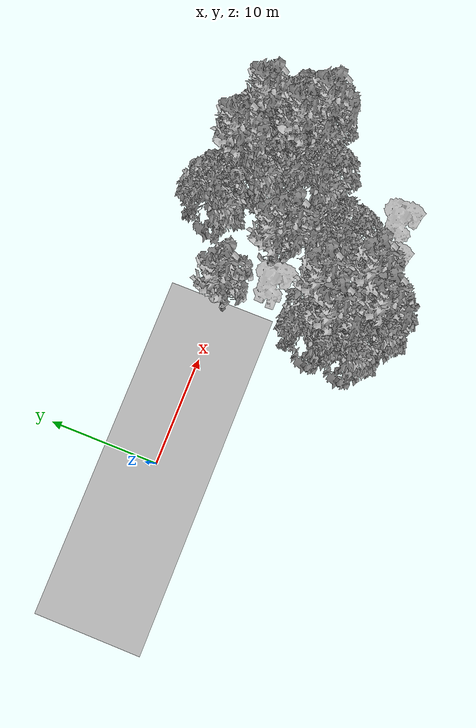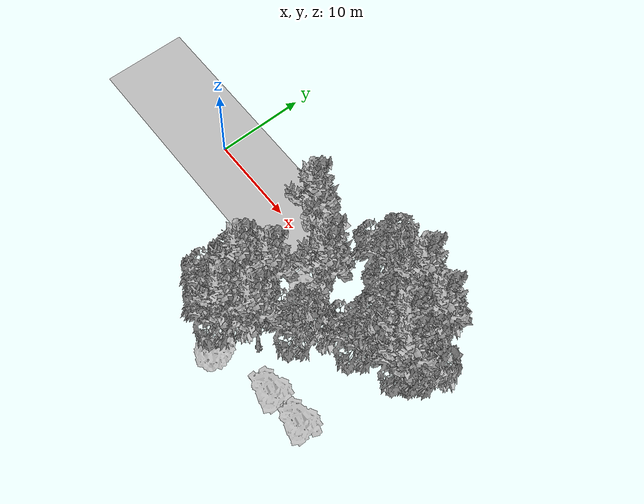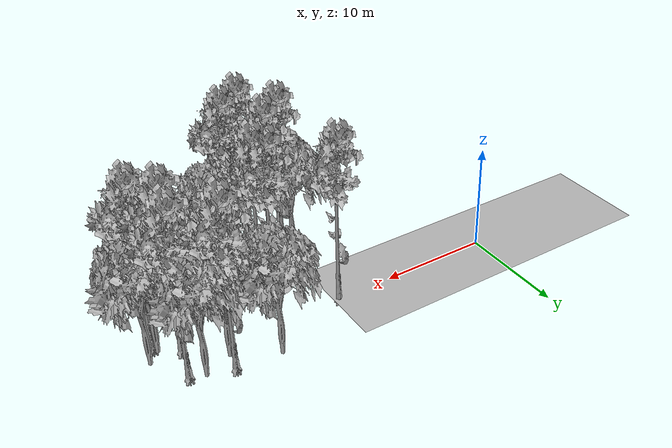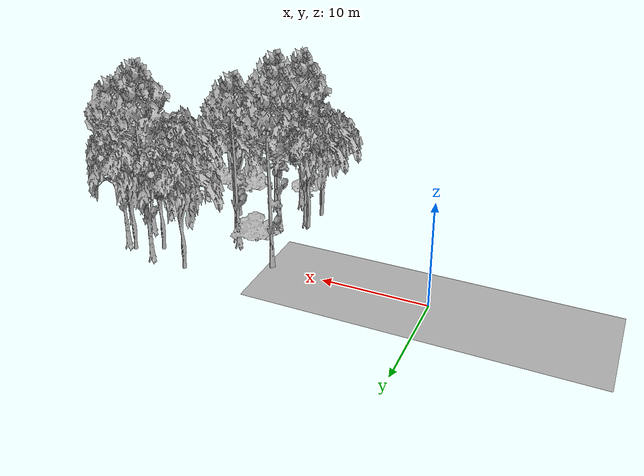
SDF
<sdf version="1.7">
 <world name="default">
  <model name="ground_plane">
   <static>1</static>
   <link name="link">
    <collision name="collision">
     <pose>-50 0 0 0 -0 0</pose>
     <geometry><plane><normal>0 0 1</normal><size>100 100</size></plane></geometry>
     <surface><contact><ode><min_depth>0.01</min_depth><max_vel>0</max_vel></ode></contact></surface>
    </collision>
    <visual name="grass">
     <cast_shadows>0</cast_shadows>
     <geometry>
      <mesh>
       <scale>0.5814285714285714 0.18142857142857144 0.1</scale>
       <uri>file://grass_plane/meshes/grass_plane.dae</uri>
      </mesh>
     </geometry>
    </visual>
   </link>
  </model>
  <model name="Tree 9">
   <static>1</static>
   <pose>26.08876032020335 1.0715336775845756 0 1.57079 -0 0</pose>
   <link name="link">
    <collision name="collision">
     <geometry><mesh><scale>3.5 5 3.5</scale><uri>model://tree_2/meshes/tree_2.obj</uri></mesh></geometry>
    </collision>
    <visual name="visual">
     <geometry><mesh><scale>3.5 5 3.5</scale><uri>model://tree_2/meshes/tree_2.obj</uri></mesh></geometry>
    </visual>
   </link>
  </model>
  <model name="Tree 22">
   <static>1</static>
   <pose>17.99346908390767 -7.283222774635866 0 1.57079 -0 0</pose>
   <link name="link">
    <collision name="collision">
     <geometry><mesh><scale>3.5 5 3.5</scale><uri>model://tree_9/meshes/tree_9.obj</uri></mesh></geometry>
    </collision>
    <visual name="visual">
     <geometry><mesh><scale>3.5 5 3.5</scale><uri>model://tree_9/meshes/tree_9.obj</uri></mesh></geometry>
    </visual>
   </link>
  </model>
  <model name="Tree 34">
   <static>1</static>
   <pose>22.427675313671912 3.15626842298742 0 1.57079 -0 0</pose>
   <link name="link">
    <collision name="collision">
     <geometry><mesh><scale>3.5 5 3.5</scale><uri>model://tree_2/meshes/tree_2.obj</uri></mesh></geometry>
    </collision>
    <visual name="visual">
     <geometry><mesh><scale>3.5 5 3.5</scale><uri>model://tree_2/meshes/tree_2.obj</uri></mesh></geometry>
    </visual>
   </link>
  </model>
  <model name="Tree 50">
   <static>1</static>
   <pose>18.035217594214686 -14.524705740083226 0 1.57079 -0 0</pose>
   <link name="link">
    <collision name="collision">
     <geometry><mesh><scale>4 2.5 4</scale><uri>model://tree_1/meshes/tree_1.obj</uri></mesh></geometry>
    </collision>
    <visual name="visual">
     <geometry><mesh><scale>4 2.5 4</scale><uri>model://tree_1/meshes/tree_1.obj</uri></mesh></geometry>
    </visual>
   </link>
  </model>
  <model name="Tree 52">
   <static>1</static>
   <pose>28.576887407296866 2.1512920128387165 0 1.57079 -0 0</pose>
   <link name="link">
    <collision name="collision">
     <geometry><mesh><scale>3.5 5 3.5</scale><uri>model://tree_2/meshes/tree_2.obj</uri></mesh></geometry>
    </collision>
    <visual name="visual">
     <geometry><mesh><scale>3.5 5 3.5</scale><uri>model://tree_2/meshes/tree_2.obj</uri></mesh></geometry>
    </visual>
   </link>
  </model>
  <model name="Tree 59">
   <static>1</static>
   <pose>26.81798654999365 -4.26074643640186 0 1.57079 -0 0</pose>
   <link name="link">
    <collision name="collision">
     <geometry><mesh><scale>3.5 5 3.5</scale><uri>model://tree_2/meshes/tree_2.obj</uri></mesh></geometry>
    </collision>
    <visual name="visual">
     <geometry><mesh><scale>3.5 5 3.5</scale><uri>model://tree_2/meshes/tree_2.obj</uri></mesh></geometry>
    </visual>
   </link>
  </model>
  <model name="Tree 90">
   <static>1</static>
   <pose>29.916397405309368 1.601530522889174 0 1.57079 -0 0</pose>
   <link name="link">
    <collision name="collision">
     <geometry><mesh><scale>3.5 5 3.5</scale><uri>model://tree_9/meshes/tree_9.obj</uri></mesh></geometry>
    </collision>
    <visual name="visual">
     <geometry><mesh><scale>3.5 5 3.5</scale><uri>model://tree_9/meshes/tree_9.obj</uri></mesh></geometry>
    </visual>
   </link>
  </model>
  <model name="Tree 101">
   <static>1</static>
   <pose>20.09967666607716 -2.721334110853034 0 1.57079 -0 0</pose>
   <link name="link">
    <collision name="collision">
     <geometry><mesh><scale>3.5 5 3.5</scale><uri>model://tree_9/meshes/tree_9.obj</uri></mesh></geometry>
    </collision>
    <visual name="visual">
     <geometry><mesh><scale>3.5 5 3.5</scale><uri>model://tree_9/meshes/tree_9.obj</uri></mesh></geometry>
    </visual>
   </link>
  </model>
  <model name="Tree 107">
   <static>1</static>
   <pose>31.764914899679383 -1.5267585763329965 0 1.57079 -0 0</pose>
   <link name="link">
    <collision name="collision">
     <geometry><mesh><scale>3.5 5 3.5</scale><uri>model://tree_2/meshes/tree_2.obj</uri></mesh></geometry>
    </collision>
    <visual name="visual">
     <geometry><mesh><scale>3.5 5 3.5</scale><uri>model://tree_2/meshes/tree_2.obj</uri></mesh></geometry>
    </visual>
   </link>
  </model>
  <model name="Tree 118">
   <static>1</static>
   <pose>15.155613044377723 -8.256537340311393 0 1.57079 -0 0</pose>
   <link name="link">
    <collision name="collision">
     <geometry><mesh><scale>3.5 5 3.5</scale><uri>model://tree_2/meshes/tree_2.obj</uri></mesh></geometry>
    </collision>
    <visual name="visual">
     <geometry><mesh><scale>3.5 5 3.5</scale><uri>model://tree_2/meshes/tree_2.obj</uri></mesh></geometry>
    </visual>
   </link>
  </model>
  <model name="Tree 121">
   <static>1</static>
   <pose>14.951676082252732 -11.111767576242885 0 1.57079 -0 0</pose>
   <link name="link">
    <collision name="collision">
     <geometry><mesh><scale>3.5 5 3.5</scale><uri>model://tree_2/meshes/tree_2.obj</uri></mesh></geometry>
    </collision>
    <visual name="visual">
     <geometry><mesh><scale>3.5 5 3.5</scale><uri>model://tree_2/meshes/tree_2.obj</uri></mesh></geometry>
    </visual>
   </link>
  </model>
  <model name="Tree 145">
   <static>1</static>
   <pose>18.8223890766224 -3.907667524296281 0 1.57079 -0 0</pose>
   <link name="link">
    <collision name="collision">
     <geometry><mesh><scale>3 2 3</scale><uri>model://tree_3/meshes/tree_3.obj</uri></mesh></geometry>
    </collision>
    <visual name="visual">
     <geometry><mesh><scale>3 2 3</scale><uri>model://tree_3/meshes/tree_3.obj</uri></mesh></geometry>
    </visual>
   </link>
  </model>
  <model name="Tree 160">
   <static>1</static>
   <pose>20.80851007629407 -3.6224122424047067 0 1.57079 -0 0</pose>
   <link name="link">
    <collision name="collision">
     <geometry><mesh><scale>3.5 5 3.5</scale><uri>model://tree_9/meshes/tree_9.obj</uri></mesh></geometry>
    </collision>
    <visual name="visual">
     <geometry><mesh><scale>3.5 5 3.5</scale><uri>model://tree_9/meshes/tree_9.obj</uri></mesh></geometry>
    </visual>
   </link>
  </model>
  <model name="Tree 168">
   <static>1</static>
   <pose>30.746796895250057 -2.5452059636831272 0 1.57079 -0 0</pose>
   <link name="link">
    <collision name="collision">
     <geometry><mesh><scale>3.5 5 3.5</scale><uri>model://tree_2/meshes/tree_2.obj</uri></mesh></geometry>
    </collision>
    <visual name="visual">
     <geometry><mesh><scale>3.5 5 3.5</scale><uri>model://tree_2/meshes/tree_2.obj</uri></mesh></geometry>
    </visual>
   </link>
  </model>
  <model name="Tree 175">
   <static>1</static>
   <pose>24.42248654865645 -12.879871108457541 0 1.57079 -0 0</pose>
   <link name="link">
    <collision name="collision">
     <geometry><mesh><scale>3 2 3</scale><uri>model://tree_3/meshes/tree_3.obj</uri></mesh></geometry>
    </collision>
    <visual name="visual">
     <geometry><mesh><scale>3 2 3</scale><uri>model://tree_3/meshes/tree_3.obj</uri></mesh></geometry>
    </visual>
   </link>
  </model>
  <model name="Tree 179">
   <static>1</static>
   <pose>31.039542271690053 -3.102977461166459 0 1.57079 -0 0</pose>
   <link name="link">
    <collision name="collision">
     <geometry><mesh><scale>3.5 5 3.5</scale><uri>model://tree_9/meshes/tree_9.obj</uri></mesh></geometry>
    </collision>
    <visual name="visual">
     <geometry><mesh><scale>3.5 5 3.5</scale><uri>model://tree_9/meshes/tree_9.obj</uri></mesh></geometry>
    </visual>
   </link>
  </model>
  <model name="Tree 185">
   <static>1</static>
   <pose>20.147794608054085 -10.781164295650523 0 1.57079 -0 0</pose>
   <link name="link">
    <collision name="collision">
     <geometry><mesh><scale>3.5 5 3.5</scale><uri>model://tree_9/meshes/tree_9.obj</uri></mesh></geometry>
    </collision>
    <visual name="visual">
     <geometry><mesh><scale>3.5 5 3.5</scale><uri>model://tree_9/meshes/tree_9.obj</uri></mesh></geometry>
    </visual>
   </link>
  </model>
  <model name="Tree 198">
   <static>1</static>
   <pose>15.864200221456755 -8.996082276012418 0 1.57079 -0 0</pose>
   <link name="link">
    <collision name="collision">
     <geometry><mesh><scale>3.5 5 3.5</scale><uri>model://tree_9/meshes/tree_9.obj</uri></mesh></geometry>
    </collision>
    <visual name="visual">
     <geometry><mesh><scale>3.5 5 3.5</scale><uri>model://tree_9/meshes/tree_9.obj</uri></mesh></geometry>
    </visual>
   </link>
  </model>
  <model name="Tree 223">
   <static>1</static>
   <pose>22.687417603542457 -7.7179172853881 0 1.57079 -0 0</pose>
   <link name="link">
    <collision name="collision">
     <geometry><mesh><scale>3.5 5 3.5</scale><uri>model://tree_2/meshes/tree_2.obj</uri></mesh></geometry>
    </collision>
    <visual name="visual">
     <geometry><mesh><scale>3.5 5 3.5</scale><uri>model://tree_2/meshes/tree_2.obj</uri></mesh></geometry>
    </visual>
   </link>
  </model>
  <model name="Tree 254">
   <static>1</static>
   <pose>26.422066637917112 2.7144402024417005 0 1.57079 -0 0</pose>
   <link name="link">
    <collision name="collision">
     <geometry><mesh><scale>3.5 5 3.5</scale><uri>model://tree_9/meshes/tree_9.obj</uri></mesh></geometry>
    </collision>
    <visual name="visual">
     <geometry><mesh><scale>3.5 5 3.5</scale><uri>model://tree_9/meshes/tree_9.obj</uri></mesh></geometry>
    </visual>
   </link>
  </model>
  <model name="Tree 260">
   <static>1</static>
   <pose>17.96926935994513 -12.351046905579866 0 1.57079 -0 0</pose>
   <link name="link">
    <collision name="collision">
     <geometry><mesh><scale>3.5 5 3.5</scale><uri>model://tree_9/meshes/tree_9.obj</uri></mesh></geometry>
    </collision>
    <visual name="visual">
     <geometry><mesh><scale>3.5 5 3.5</scale><uri>model://tree_9/meshes/tree_9.obj</uri></mesh></geometry>
    </visual>
   </link>
  </model>
  <model name="Tree 262">
   <static>1</static>
   <pose>17.488162464051655 -12.71780058959002 0 1.57079 -0 0</pose>
   <link name="link">
    <collision name="collision">
     <geometry><mesh><scale>3.5 5 3.5</scale><uri>model://tree_2/meshes/tree_2.obj</uri></mesh></geometry>
    </collision>
    <visual name="visual">
     <geometry><mesh><scale>3.5 5 3.5</scale><uri>model://tree_2/meshes/tree_2.obj</uri></mesh></geometry>
    </visual>
   </link>
  </model>
  <model name="Tree 263">
   <static>1</static>
   <pose>15.170502935749987 -0.20645418666364002 0 1.57079 -0 0</pose>
   <link name="link">
    <collision name="collision">
     <geometry><mesh><scale>3.5 5 3.5</scale><uri>model://tree_9/meshes/tree_9.obj</uri></mesh></geometry>
    </collision>
    <visual name="visual">
     <geometry><mesh><scale>3.5 5 3.5</scale><uri>model://tree_9/meshes/tree_9.obj</uri></mesh></geometry>
    </visual>
   </link>
  </model>
  <model name="Tree 282">
   <static>1</static>
   <pose>29.210791933543945 -1.5756029173189638 0 1.57079 -0 0</pose>
   <link name="link">
    <collision name="collision">
     <geometry><mesh><scale>3.5 5 3.5</scale><uri>model://tree_9/meshes/tree_9.obj</uri></mesh></geometry>
    </collision>
    <visual name="visual">
     <geometry><mesh><scale>3.5 5 3.5</scale><uri>model://tree_9/meshes/tree_9.obj</uri></mesh></geometry>
    </visual>
   </link>
  </model>
  <model name="Tree 285">
   <static>1</static>
   <pose>28.337113903666847 -12.615209039962469 0 1.57079 -0 0</pose>
   <link name="link">
    <collision name="collision">
     <geometry><mesh><scale>3 2 3</scale><uri>model://tree_3/meshes/tree_3.obj</uri></mesh></geometry>
    </collision>
    <visual name="visual">
     <geometry><mesh><scale>3 2 3</scale><uri>model://tree_3/meshes/tree_3.obj</uri></mesh></geometry>
    </visual>
   </link>
  </model>
 </world>
</sdf>
